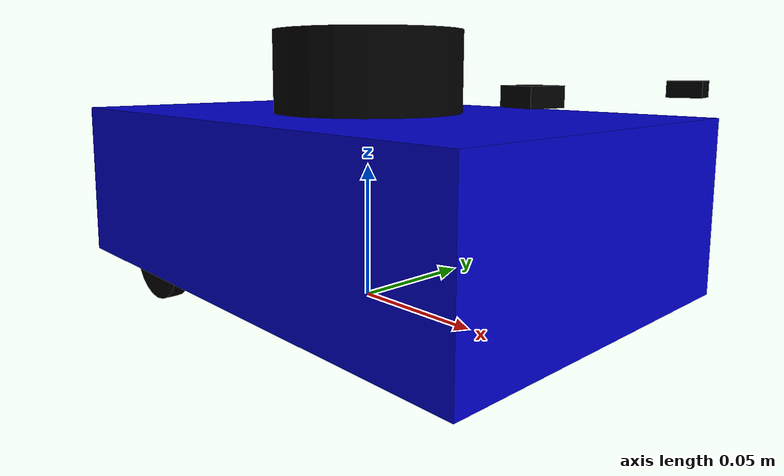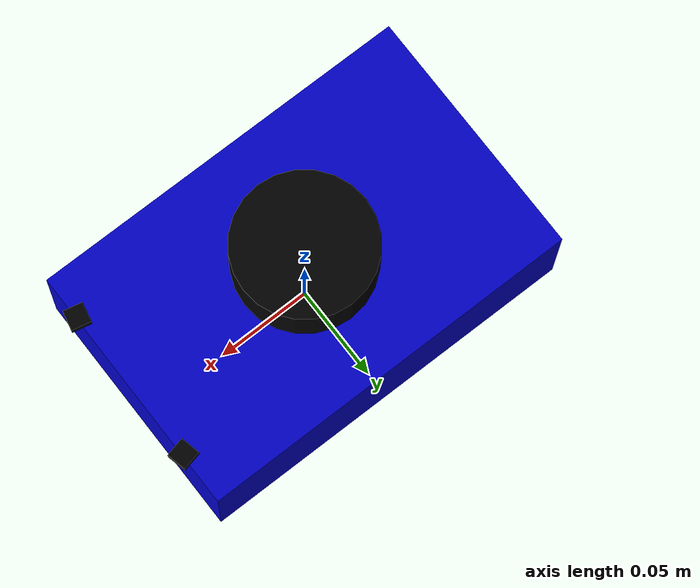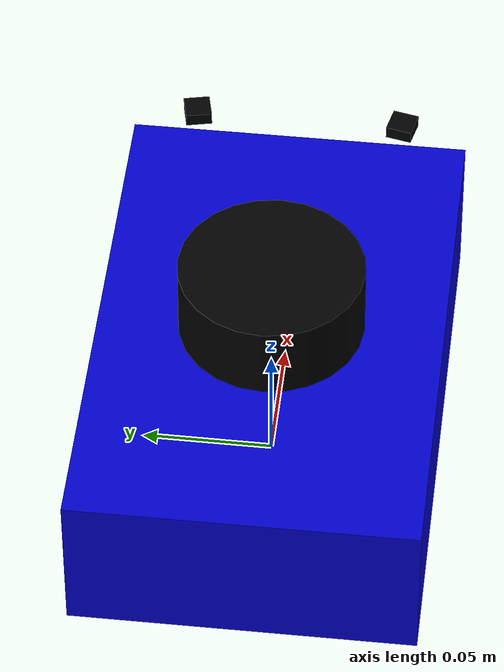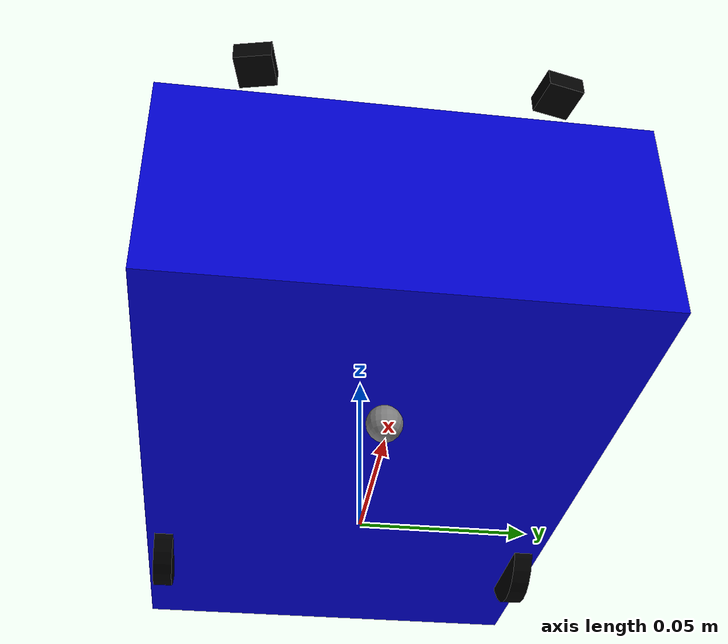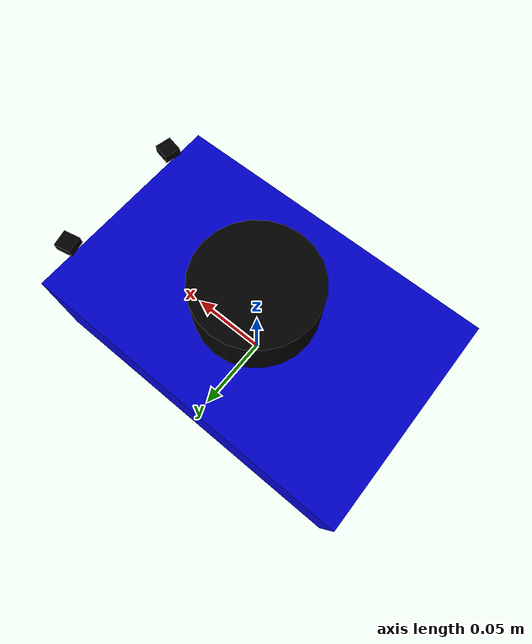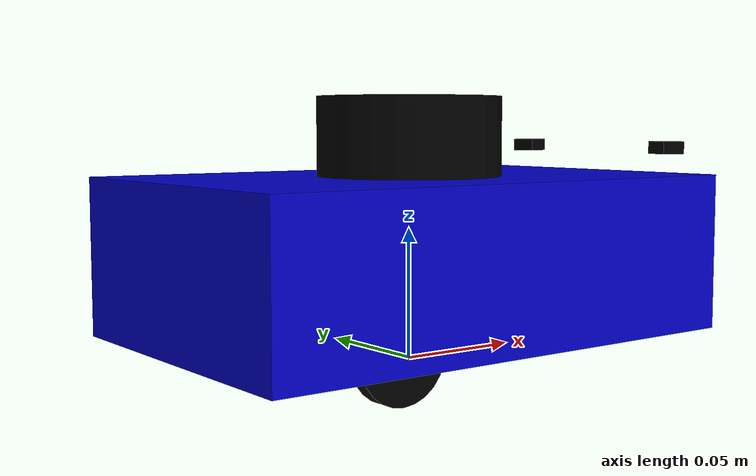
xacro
<?xml version="1.0"?>
<robot name="kushagrabot" xmlns:xacro="http://www.ros.org/wiki/xacro">

  <!-- Include material colors and gazebo plugins -->
  <xacro:include filename="materials.xacro" />
  <xacro:include filename="kushagrabot_gazebo.xacro" />

  <!-- Define robot parameters -->
  <xacro:property name="body_mass" value="0.7" />
  <xacro:property name="body_length" value="0.2" />
  <xacro:property name="body_width" value="0.13" />
  <xacro:property name="body_height" value="0.06" />

  <xacro:property name="wheel_mass" value="0.05" />
  <xacro:property name="wheel_radius" value="0.017" />
  <xacro:property name="wheel_thickness" value="0.006" />
  <!-- Wheel y-position: 119mm / 2 = 59.5mm -->
  <xacro:property name="wheel_y_offset" value="0.0595" />
  <!-- Wheels are at back -->
  <xacro:property name="wheel_x_offset" value="-0.05" />
  <!-- Wheels geometric center to achieve 10mm ground clearance -->
  <!-- ground = body_bottom (-0.03) - clearance (0.01) = -0.04 -->
  <!-- wheel_z = ground (-0.04) + wheel_radius (0.017) = -0.023 -->
  <xacro:property name="wheel_z_offset" value="-0.023" />

  <xacro:property name="castor_mass" value="0.05" />
  <xacro:property name="castor_radius" value="0.005" /> <!-- Diameter is 10mm -->
  <!-- Castor is at front -->
  <xacro:property name="castor_x_offset" value="0.05" />
  <!-- Castor z-position to touch the ground (-0.04 + 0.005 = -0.035) -->
  <xacro:property name="castor_z_offset" value="-0.035" />

  <!-- Ground offset so base_footprint is on the ground based on wheels -->
  <!-- ground = -0.04 relative to base_link center. So base_link is 0.04 above footprint -->
  <xacro:property name="base_z_offset" value="0.04" />

  <!-- Inertia macros -->
  <xacro:macro name="box_inertia" params="m x y z">
    <inertial>
      <mass value="${m}" />
      <inertia ixx="${(1/12) * m * (y*y + z*z)}" ixy="0.0" ixz="0.0"
               iyy="${(1/12) * m * (x*x + z*z)}" iyz="0.0"
               izz="${(1/12) * m * (x*x + y*y)}" />
    </inertial>
  </xacro:macro>

  <xacro:macro name="cylinder_inertia" params="m r h">
    <inertial>
      <mass value="${m}" />
      <inertia ixx="${(1/12) * m * (3*r*r + h*h)}" ixy="0.0" ixz="0.0"
               iyy="${(1/12) * m * (3*r*r + h*h)}" iyz="0.0"
               izz="${(1/2) * m * r*r}" />
    </inertial>
  </xacro:macro>

  <xacro:macro name="sphere_inertia" params="m r">
    <inertial>
      <mass value="${m}" />
      <inertia ixx="${(2/5) * m * r*r}" ixy="0.0" ixz="0.0"
               iyy="${(2/5) * m * r*r}" iyz="0.0"
               izz="${(2/5) * m * r*r}" />
    </inertial>
  </xacro:macro>

  <!-- BASE LINK -->
  <link name="base_footprint" />

  <joint name="base_joint" type="fixed">
    <parent link="base_footprint"/>
    <child link="base_link"/>
    <origin xyz="0 0 ${base_z_offset}" rpy="0 0 0"/>
  </joint>

  <link name="base_link">
    <visual>
      <origin xyz="0 0 0" rpy="0 0 0"/>
      <geometry>
        <box size="${body_length} ${body_width} ${body_height}"/>
      </geometry>
      <material name="blue"/>
    </visual>
    <collision>
      <origin xyz="0 0 0" rpy="0 0 0"/>
      <geometry>
        <box size="${body_length} ${body_width} ${body_height}"/>
      </geometry>
    </collision>
    <xacro:box_inertia m="${body_mass}" x="${body_length}" y="${body_width}" z="${body_height}"/>
  </link>

  <!-- LEFT WHEEL -->
  <joint name="left_wheel_joint" type="continuous">
    <parent link="base_link"/>
    <child link="left_wheel"/>
    <origin xyz="${wheel_x_offset} ${wheel_y_offset} ${wheel_z_offset}" rpy="-${pi/2} 0 0"/>
    <axis xyz="0 0 1"/>
  </joint>

  <link name="left_wheel">
    <visual>
      <geometry>
        <cylinder radius="${wheel_radius}" length="${wheel_thickness}"/>
      </geometry>
      <material name="black"/>
    </visual>
    <collision>
      <!-- Requirement: keep collision geometry of wheels as a sphere -->
      <geometry>
        <sphere radius="${wheel_radius}"/>
      </geometry>
    </collision>
    <xacro:cylinder_inertia m="${wheel_mass}" r="${wheel_radius}" h="${wheel_thickness}"/>
  </link>

  <!-- RIGHT WHEEL -->
  <joint name="right_wheel_joint" type="continuous">
    <parent link="base_link"/>
    <child link="right_wheel"/>
    <origin xyz="${wheel_x_offset} ${-wheel_y_offset} ${wheel_z_offset}" rpy="${pi/2} 0 0"/>
    <axis xyz="0 0 -1"/>
  </joint>

  <link name="right_wheel">
    <visual>
      <geometry>
        <cylinder radius="${wheel_radius}" length="${wheel_thickness}"/>
      </geometry>
      <material name="black"/>
    </visual>
    <collision>
      <!-- Requirement: keep collision geometry of wheels as a sphere -->
      <geometry>
        <sphere radius="${wheel_radius}"/>
      </geometry>
    </collision>
    <xacro:cylinder_inertia m="${wheel_mass}" r="${wheel_radius}" h="${wheel_thickness}"/>
  </link>

  <!-- CASTOR WHEEL -->
  <joint name="castor_joint" type="fixed">
    <parent link="base_link"/>
    <child link="castor_wheel"/>
    <origin xyz="${castor_x_offset} 0.0 ${castor_z_offset}" rpy="0 0 0"/>
  </joint>

  <link name="castor_wheel">
    <visual>
      <geometry>
        <sphere radius="${castor_radius}"/>
      </geometry>
      <material name="grey"/>
    </visual>
    <collision>
      <!-- Castor geometry is sphere as per its type -->
      <geometry>
        <sphere radius="${castor_radius}"/>
      </geometry>
    </collision>
    <xacro:sphere_inertia m="${castor_mass}" r="${castor_radius}"/>
  </link>

  <!-- TOF SENSORS -->
  <xacro:property name="tof_mass" value="0.005" />
  <xacro:property name="tof_x" value="0.01" />
  <xacro:property name="tof_y" value="0.01" />
  <xacro:property name="tof_z" value="0.005" />

  <!-- Left ToF Sensor (+12.5 deg = 0.218 rad) -->
  <joint name="left_tof_joint" type="fixed">
    <parent link="base_link"/>
    <child link="left_tof_link"/>
    <origin xyz="${body_length/2} 0.04 ${body_height/2 + 0.01}" rpy="0 0 0.218"/>
  </joint>

  <link name="left_tof_link">
    <visual>
      <geometry>
        <box size="${tof_x} ${tof_y} ${tof_z}"/>
      </geometry>
      <material name="black"/>
    </visual>
    <collision>
      <geometry>
        <box size="${tof_x} ${tof_y} ${tof_z}"/>
      </geometry>
    </collision>
    <xacro:box_inertia m="${tof_mass}" x="${tof_x}" y="${tof_y}" z="${tof_z}"/>
  </link>

  <!-- Right ToF Sensor (-12.5 deg = -0.218 rad) -->
  <joint name="right_tof_joint" type="fixed">
    <parent link="base_link"/>
    <child link="right_tof_link"/>
    <origin xyz="${body_length/2} -0.04 ${body_height/2 + 0.01}" rpy="0 0 -0.218"/>
  </joint>

  <link name="right_tof_link">
    <visual>
      <geometry>
        <box size="${tof_x} ${tof_y} ${tof_z}"/>
      </geometry>
      <material name="black"/>
    </visual>
    <collision>
      <geometry>
        <box size="${tof_x} ${tof_y} ${tof_z}"/>
      </geometry>
    </collision>
    <xacro:box_inertia m="${tof_mass}" x="${tof_x}" y="${tof_y}" z="${tof_z}"/>
  </link>

  <!-- LIDAR SENSOR -->
  <xacro:property name="lidar_mass" value="0.1" />
  <xacro:property name="lidar_radius" value="0.035" />
  <xacro:property name="lidar_height" value="0.03" />

  <joint name="lidar_joint" type="fixed">
    <parent link="base_link"/>
    <child link="lidar_link"/>
    <origin xyz="0 0 ${body_height/2 + lidar_height/2}" rpy="0 0 0"/>
  </joint>

  <link name="lidar_link">
    <visual>
      <geometry>
        <cylinder radius="${lidar_radius}" length="${lidar_height}"/>
      </geometry>
      <material name="black"/>
    </visual>
    <collision>
      <geometry>
        <cylinder radius="${lidar_radius}" length="${lidar_height}"/>
      </geometry>
    </collision>
    <xacro:cylinder_inertia m="${lidar_mass}" r="${lidar_radius}" h="${lidar_height}"/>
  </link>

  <!-- ROS2 CONTROL -->
  <ros2_control name="KushagraBotSystemHardware" type="system">
    <hardware>
      <plugin>kushagrabot_hardware/KushagraBotSystemHardware</plugin>
    </hardware>
    <joint name="left_wheel_joint">
      <command_interface name="velocity">
        <param name="min">-10</param>
        <param name="max">10</param>
      </command_interface>
      <state_interface name="position"/>
      <state_interface name="velocity"/>
    </joint>
    <joint name="right_wheel_joint">
      <command_interface name="velocity">
        <param name="min">-10</param>
        <param name="max">10</param>
      </command_interface>
      <state_interface name="position"/>
      <state_interface name="velocity"/>
    </joint>
  </ros2_control>

  <!-- IMU LINK -->
  <link name="imu_link">
    <!-- Visual/Collision not strictly necessary, it's just for tf -->
  </link>

  <joint name="imu_joint" type="fixed">
    <parent link="base_link"/>
    <child link="imu_link"/>
    <origin xyz="0 0 0" rpy="0 0 0"/>
  </joint>

</robot>

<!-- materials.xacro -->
<robot xmlns:xacro="http://www.ros.org/wiki/xacro">

  <material name="blue">
    <color rgba="0.0 0.0 0.8 1.0"/>
  </material>

  <material name="black">
    <color rgba="0.0 0.0 0.0 1.0"/>
  </material>

  <material name="grey">
    <color rgba="0.5 0.5 0.5 1.0"/>
  </material>

</robot>
